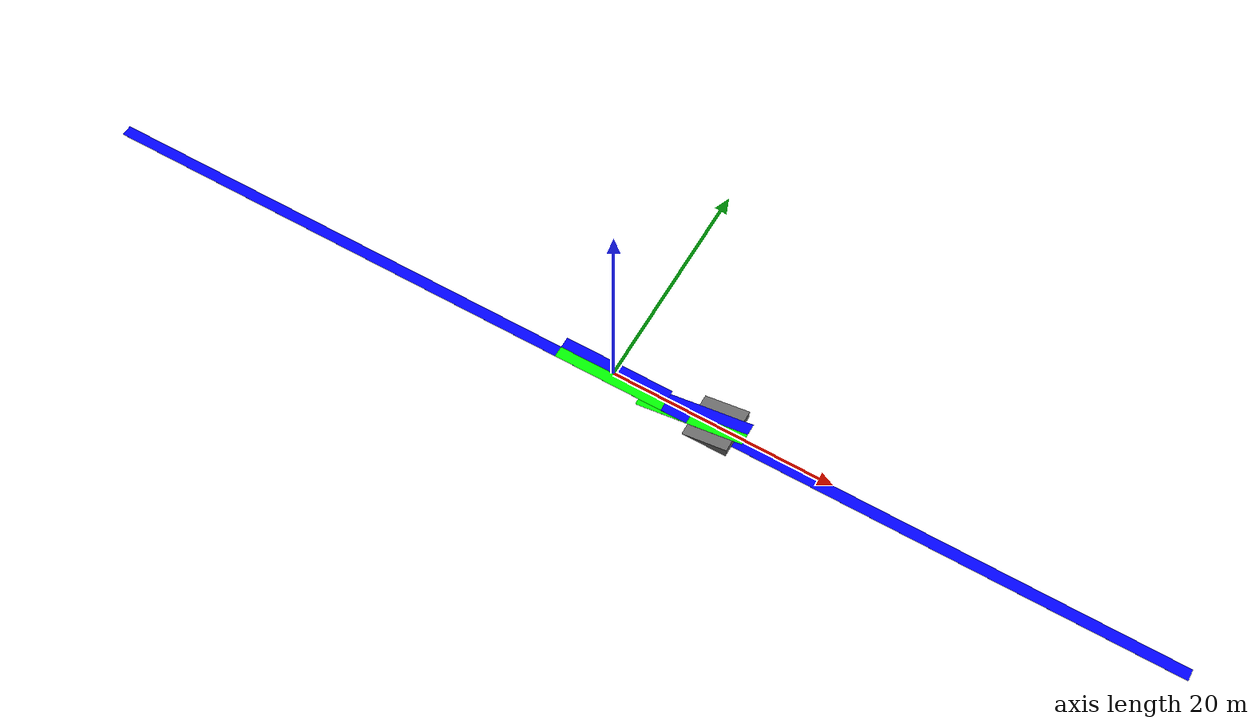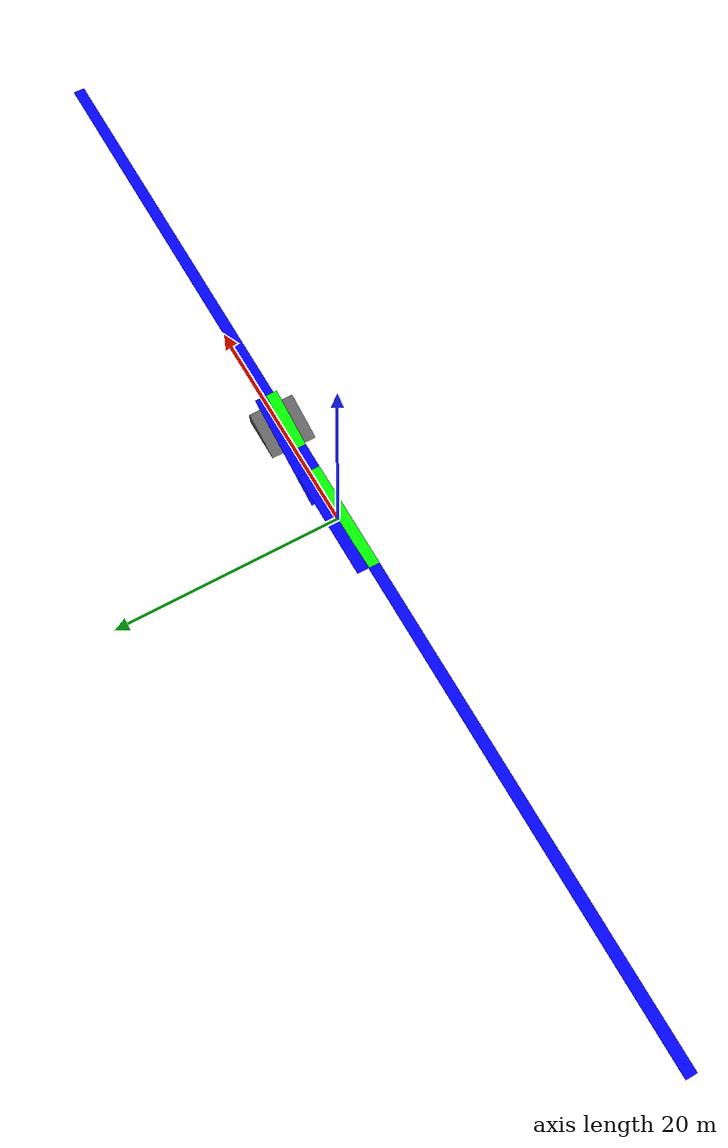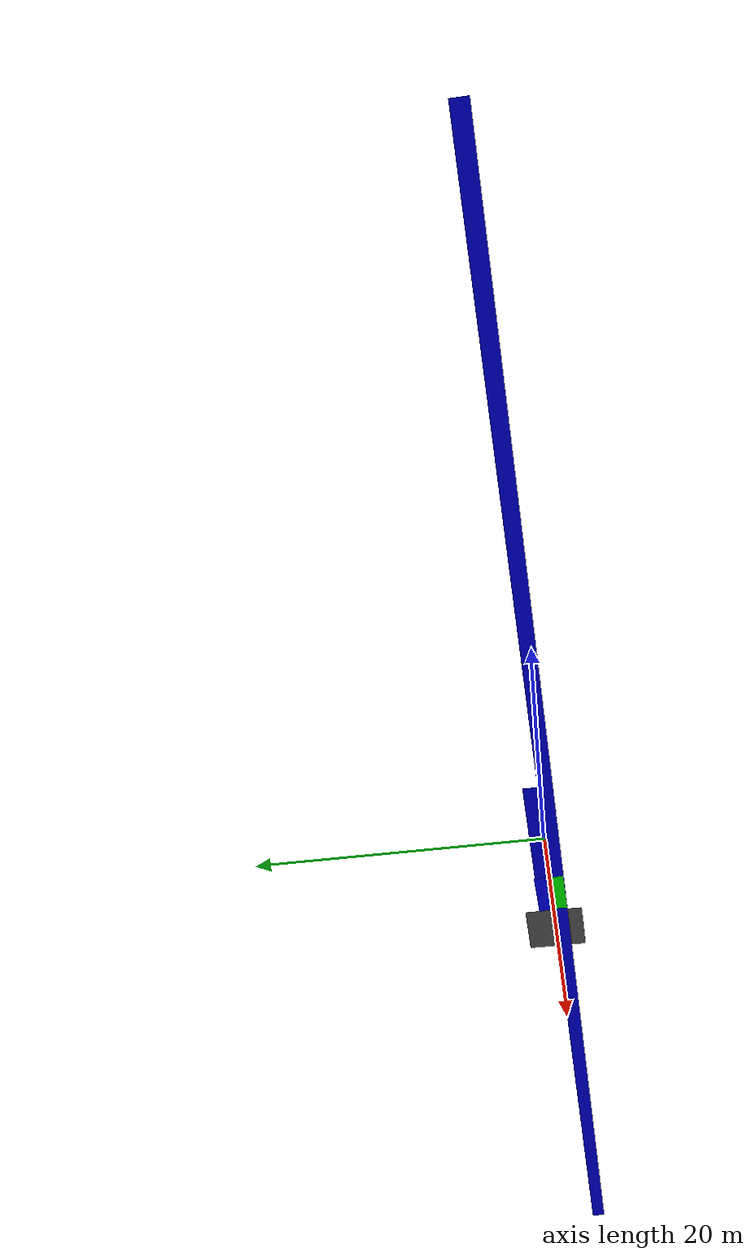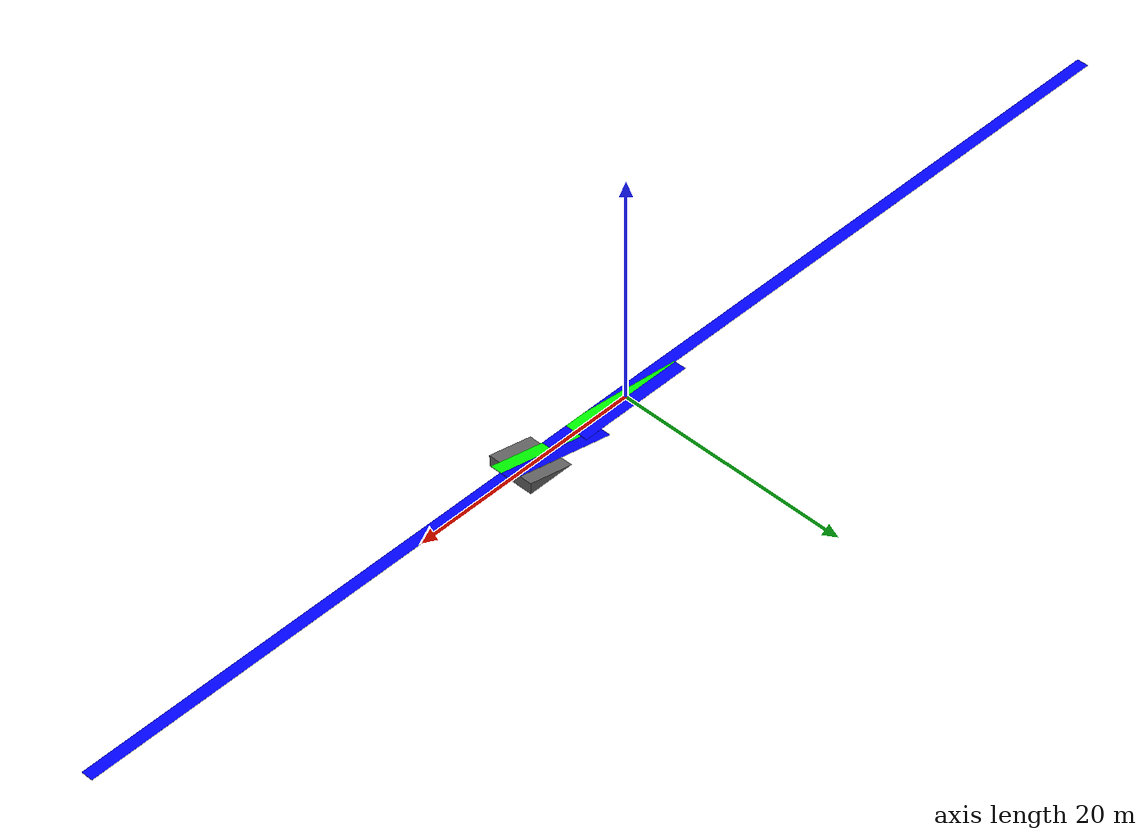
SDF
<?xml version="1.0" encoding="utf-8"?>
<sdf version="1.6">
    <model name="split_belt_treadmill">
        <static>false</static>

        <!-- left belt -->
        <link name="left_belt_visual">
            <pose>0 0.5 0.005 0 0 0</pose>
            <inertial>
                <mass>50.0</mass>
                <inertia>
                    <ixx>10.0</ixx>
                    <iyy>10.0</iyy>
                    <izz>10.0</izz>
                </inertia>
            </inertial>
            <visual name="leftbelt_visual">
                <geometry>
                    <box><size>10 1 0.005</size></box>
                </geometry>
                <material>
                    <ambient>0.0 0.0 1.0 1.0</ambient>  <!-- blue -->
                </material>
            </visual>
            <collision name="left_belt_collision">
                <geometry>
                    <box><size>10 1 0.005</size></box>  <!-- length of X,Y,Z direction -->
                </geometry>
                <surface>
                    <friction>
                        <ode>
                            <mu>1.2</mu>
                            <mu2>1.2</mu2>
                        </ode>
                    </friction>
                </surface>
            </collision>
        </link>

        <!-- right belt -->
        <link name="right_belt_visual">
            <pose>0 -0.5 0.005 0 0 0</pose>
            <inertial>
                <mass>50.0</mass>
                <inertia>
                    <ixx>10.0</ixx>
                    <iyy>10.0</iyy>
                    <izz>10.0</izz>
                </inertia>
            </inertial>
            <visual name="rightbelt_visual">
                <geometry>
                    <box><size>10 1 0.005</size></box>
                </geometry>
                <material>
                    <ambient>0.0 1.0 0.0 1.0</ambient>  <!-- green -->
                </material>
            </visual>
            <collision name="right_belt_collision">
                <geometry>
                    <box><size>10 1 0.005</size></box>
                </geometry>
                <surface>
                    <friction>
                        <ode>
                            <mu>1.2</mu>
                            <mu2>1.2</mu2>
                        </ode>
                    </friction>
                </surface>
            </collision>
        </link>

        <!-- Define the joint for moving -->
        <joint name="left_belt_joint" type="prismatic">
            <parent>world</parent>
            <child>left_belt_moving</child>
            <axis>
                <xyz>1 0 0</xyz>  <!-- along x -->
                <limit>
                    <lower>-1e16</lower>
                    <upper>1e16</upper>
                </limit>
                <dynamics>
                    <damping>0.1</damping>
                </dynamics>
            </axis>
        </joint>

        <joint name="right_belt_joint" type="prismatic">
            <parent>world</parent>
            <child>right_belt_moving</child>
            <axis>
                <xyz>1 0 0</xyz>
                <limit>
                    <lower>-1e16</lower>
                    <upper>1e16</upper>
                </limit>
                <dynamics>
                    <damping>0.1</damping>
                </dynamics>
            </axis>
        </joint>

        <!-- Define the actual moving belts -->
        <link name="left_belt_moving">
            <pose>0 0.5 0.005 0 0 0</pose>
            <inertial>
                <mass>10.0</mass>
                <inertia>
                    <ixx>1.0</ixx>
                    <iyy>1.0</iyy>
                    <izz>1.0</izz>
                </inertia>
            </inertial>

            <collision name="left_belt_moving_collision">
                <geometry>
                    <box><size>100 1 0.005</size></box>
                </geometry>
            </collision>
        </link>

        <link name="right_belt_moving">
            <pose>0 -0.5 0.005 0 0 0</pose>
            <inertial>
                <mass>1.0</mass>
                <inertia>
                    <ixx>1.0</ixx>
                    <iyy>1.0</iyy>
                    <izz>1.0</izz>
                </inertia>
            </inertial>
            <visual name="rightbelt_visual">
                <geometry>
                    <box><size>100 1 0.005</size></box>
                </geometry>
                <material>
                    <ambient>0.0 0.0 1.0 1.0</ambient>  <!-- green -->
                </material>
            </visual>
            <collision name="right_belt_moving_collision">
                <geometry>
                    <box><size>100 1 0.005</size></box>
                </geometry>
            </collision>
        </link>

        <!-- Inclined split belt -->

        <joint name="base_plate_fixed_joint" type="fixed">
            <parent>world</parent>
            <child>inclined_base</child>
        </joint>

        <link name="inclined_base">
            <pose>7.5 2 0.03 1.57 0 0</pose>
            <inertial>
                <mass>100.0</mass>
                <inertia>
                    <ixx>10.0</ixx>
                    <iyy>10.0</iyy>
                    <izz>10.0</izz>
                </inertia>
            </inertial>
            <visual name="inclined_base_visual">
                <geometry>
                    <mesh>
                        <uri>model:///meshes/inclined_base.dae</uri>
                        <scale>0.1 0.1 0.1</scale>
                    </mesh>
                </geometry>
                <material>
                    <ambient>0.4 0.4 0.4 1.0</ambient>  <!-- green -->
                </material>
            </visual>
            <collision name="right_belt_moving_collision">
                <geometry>
                    <mesh>
                        <uri>model:///meshes/inclined_base.dae</uri>
                        <scale>0.1 0.1 0.1</scale>
                    </mesh>
                </geometry>
            </collision>
        </link>

        <joint name="tl" type="fixed">
            <parent>world</parent>
            <child>left_belt_incline_visual</child>
        </joint>
        <joint name="tr" type="fixed">
            <parent>world</parent>
            <child>left_belt_incline_visual</child>
        </joint>

        <link name="left_belt_incline_visual">
            <pose>7.5 0.5 0.045 0 -0.245 0</pose>
            <inertial>
                <mass>50.0</mass>
                <inertia>
                    <ixx>10.0</ixx>
                    <iyy>10.0</iyy>
                    <izz>10.0</izz>
                </inertia>
            </inertial>
            <visual name="leftbelt_incline_visual">
                <geometry>
                    <box><size>10 1 0.005</size></box>
                </geometry>
                <material>0
                    <ambient>0.0 0.0 1.0 1.0</ambient>  <!-- blue -->
                </material>
            </visual>
            <collision name="left_belt_incline_collision">
                <geometry>
                    <box><size>10 1 0.005</size></box>  <!-- length of X,Y,Z direction -->
                </geometry>
                <surface>
                    <friction>
                        <ode>
                            <mu>10</mu>
                            <mu2>10</mu2>
                        </ode>
                    </friction>
                </surface>
            </collision>
        </link>

        <link name="right_belt_incline_visual">
            <pose>7.5 -0.5 0.045 0 -0.245 0</pose>
            <inertial>
                <mass>50.0</mass>
                <inertia>
                    <ixx>10.0</ixx>
                    <iyy>10.0</iyy>
                    <izz>10.0</izz>
                </inertia>
            </inertial>
            <visual name="rightbelt_incline_visual">
                <geometry>
                    <box><size>10 1 0.005</size></box>
                </geometry>
                <material>
                    <ambient>0.0 1.0 0.0 1.0</ambient>  <!-- green -->
                </material>
            </visual>
            <collision name="right_belt_incline_collision">
                <geometry>
                    <box><size>10 1 0.005</size></box>
                </geometry>
                <surface>
                    <friction>
                        <ode>
                            <mu>10</mu>
                            <mu2>10</mu2>
                        </ode>
                    </friction>
                </surface>
            </collision>
        </link>

        <!-- left belt test -->
        <joint name="l1" type="prismatic">
            <parent>world</parent>
            <child>left_belt_incline_moving</child>
            <axis>
                <xyz>4 1 0</xyz>  <!-- along x -->
                <limit>
                    <lower>-1e16</lower>
                    <upper>1e16</upper>
                </limit>
                <dynamics>
                    <damping>0.1</damping>
                </dynamics>
            </axis>
        </joint>

        <joint name="r1" type="prismatic">
            <parent>world</parent>
            <child>right_belt_incline_moving</child>
            <axis>
                <xyz>4 1 0</xyz>
                <limit>
                    <lower>-1e16</lower>
                    <upper>1e16</upper>
                </limit>
                <dynamics>
                    <damping>0.1</damping>
                </dynamics>
            </axis>
        </joint>

        <!-- Define the actual moving belts -->
        <link name="left_belt_incline_moving">
            <pose>0 0.5 0.005 0 0 0</pose>
            <inertial>
                <mass>10.0</mass>
                <inertia>
                    <ixx>1.0</ixx>
                    <iyy>1.0</iyy>
                    <izz>1.0</izz>
                </inertia>
            </inertial>

            <collision name="left_belt_incline_moving_collision">
                <geometry>
                    <box><size>100 1 0.005</size></box>
                </geometry>
            </collision>
        </link>

        <link name="right_belt_incline_moving">
            <pose>0 -0.5 0.005 0 0 0</pose>
            <inertial>
                <mass>1.0</mass>
                <inertia>
                    <ixx>1.0</ixx>
                    <iyy>1.0</iyy>
                    <izz>1.0</izz>
                </inertia>
            </inertial>
            <visual name="rightbelt_incline_visual">
                <geometry>
                    <box><size>100 1 0.005</size></box>
                </geometry>
                <material>
                    <ambient>0.0 0.0 1.0 1.0</ambient>  <!-- green -->
                </material>
            </visual>
            <collision name="right_belt_incline_moving_collision">
                <geometry>
                    <box><size>100 1 0.005</size></box>
                </geometry>
            </collision>
        </link>

        <!-- Plugin for Left Conveyor Belt -->
        <plugin name="conveyor_belt_plugin_1" filename="libROSConveyorBeltPlugin.so">
            <robot_namespace>/belt1</robot_namespace>
            <link>left_belt_moving</link>
            <joint>left_belt_joint</joint>
            <power>0.0</power>
            <max_velocity>5.0</max_velocity>
        </plugin>

        <!-- Plugin for Right Conveyor Belt -->
        <plugin name="conveyor_belt_plugin_2" filename="libROSConveyorBeltPlugin.so">
            <robot_namespace>/belt2</robot_namespace>
            <link>right_belt_moving</link>
            <joint>right_belt_joint</joint>
            <power>0.0</power>
            <max_velocity>5.0</max_velocity>
        </plugin>

        <!-- Plugin for Left Incline Conveyor Belt -->
        <plugin name="conveyor_belt_incline_plugin_1" filename="libROSConveyorBeltPlugin.so">
            <robot_namespace>/l2</robot_namespace>
            <link>left_belt_incline_moving</link>
            <joint>l1</joint>
            <power>0.0</power>
            <max_velocity>5.0</max_velocity>
        </plugin>

        <!-- Plugin for Right Incline Conveyor Belt -->
        <plugin name="conveyor_belt_incline_plugin_2" filename="libROSConveyorBeltPlugin.so">
            <robot_namespace>/r2</robot_namespace>
            <link>right_belt_incline_moving</link>
            <joint>r1</joint>
            <power>0.0</power>
            <max_velocity>5.0</max_velocity>
        </plugin>

    </model>
</sdf>
